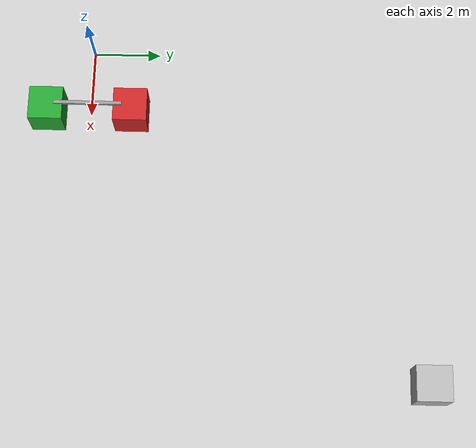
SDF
<sdf version="1.5">
 <world name="default">
  <include><uri>model://sun</uri></include>
  <include><uri>model://ground_plane</uri></include>
  <model name="box_right">
   <pose>2 -1.25 0.5 0 0 0</pose>
   <link name="link">
    <inertial>
     <mass>1</mass>
     <inertia>
      <ixx>0.166667</ixx>
      <ixy>0</ixy>
      <ixz>0</ixz>
      <iyy>0.166667</iyy>
      <iyz>0</iyz>
      <izz>0.166667</izz>
     </inertia>
    </inertial>
    <collision name="collision"><geometry><box><size>1 1 1</size></box></geometry></collision>
    <visual name="visual">
     <geometry><box><size>1 1 1</size></box></geometry>
     <material>
      <script><name>Gazebo/Green</name><uri>file://media/materials/scripts/gazebo.material</uri></script>
     </material>
    </visual>
   </link>
  </model>
  <model name="box_left">
   <pose>2 1.25 0.5 0 0 0</pose>
   <link name="link">
    <inertial>
     <mass>1</mass>
     <inertia>
      <ixx>0.166667</ixx>
      <ixy>0</ixy>
      <ixz>0</ixz>
      <iyy>0.166667</iyy>
      <iyz>0</iyz>
      <izz>0.166667</izz>
     </inertia>
    </inertial>
    <collision name="collision"><geometry><box><size>1 1 1</size></box></geometry></collision>
    <visual name="visual">
     <geometry><box><size>1 1 1</size></box></geometry>
     <material>
      <script><name>Gazebo/Red</name><uri>file://media/materials/scripts/gazebo.material</uri></script>
     </material>
    </visual>
   </link>
  </model>
  <model name="bar">
   <pose>2 0 1.01 0 0 1.57</pose>
   <link name="link">
    <inertial>
     <mass>0.1</mass>
     <inertia>
      <ixx>0.166667</ixx>
      <ixy>0</ixy>
      <ixz>0</ixz>
      <iyy>0.166667</iyy>
      <iyz>0</iyz>
      <izz>0.166667</izz>
     </inertia>
    </inertial>
    <collision name="collision"><geometry><box><size>2 0.1 0.1</size></box></geometry></collision>
    <visual name="visual">
     <geometry><box><size>2 0.1 0.1</size></box></geometry>
     <material>
      <script><name>Gazebo/Grey</name><uri>file://media/materials/scripts/gazebo.material</uri></script>
     </material>
    </visual>
   </link>
  </model>
  <model name="box">
   <pose>10 10 0.5 0 0 0</pose>
   <link name="link">
    <collision name="collision"><geometry><box><size>1 1 1</size></box></geometry></collision>
    <visual name="visual"><geometry><box><size>1 1 1</size></box></geometry></visual>
   </link>
   <plugin name="model_push" filename="/home/danilo/gazebo_plugin_tutorial/build/libmodel_push.so"/>
  </model>
 </world>
</sdf>
